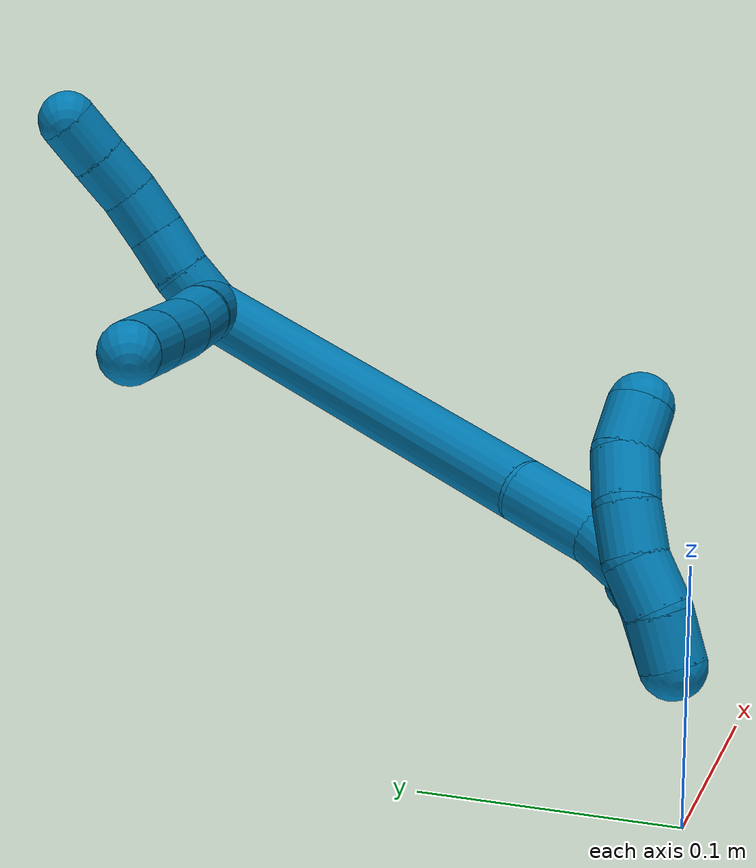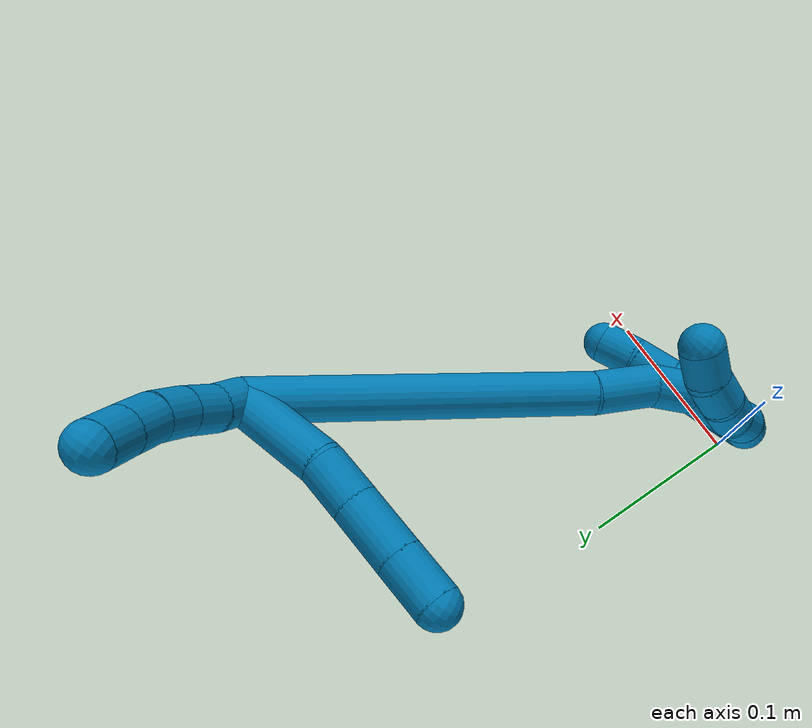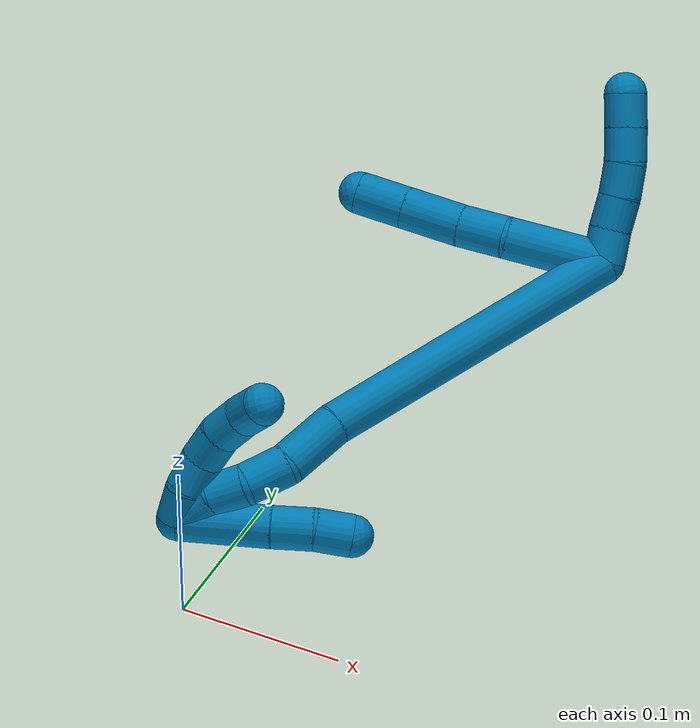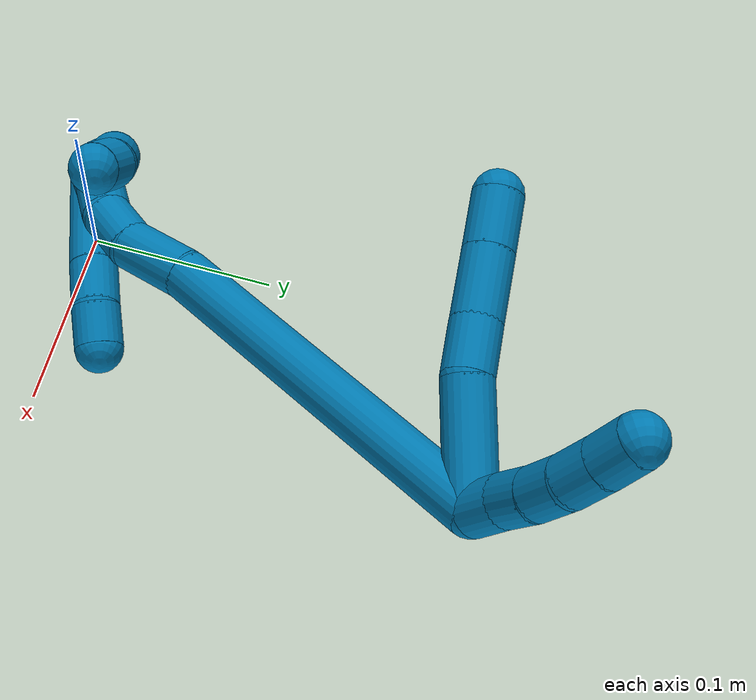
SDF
<sdf version="1.7">
 <world name="default">
  <model name="9">
   <static>0</static>
   <link name="9">
    <collision name="collision-cylinder-e_1_2_8">
     <pose>-0.011433 0.011524 -0.024529 -2.7024 -0.39922 1.47267</pose>
     <geometry><cylinder><radius>0.0125</radius><length>0.058827</length></cylinder></geometry>
     <surface>
      <friction><ode><mu>1.16</mu><mu2>1.16</mu2><slip1>0</slip1><slip2>0</slip2></ode></friction>
      <contact><ode><kp>1e+06</kp><kd>1</kd><max_vel>0</max_vel><min_depth>0.001</min_depth></ode></contact>
     </surface>
    </collision>
    <visual name="visual-cylinder-e_1_2_8">
     <pose>-0.011433 0.011524 -0.024529 -2.7024 -0.39922 1.47267</pose>
     <geometry><cylinder><radius>0.0125</radius><length>0.058827</length></cylinder></geometry>
     <material><ambient>0 0.490196 0.709804 1</ambient></material>
    </visual>
    <collision name="collision-cylinder-e_2_8_9">
     <pose>-0.0251 0.029365 -0.060941 -2.65294 -0.164463 0.638558</pose>
     <geometry><cylinder><radius>0.0125</radius><length>0.027287</length></cylinder></geometry>
     <surface>
      <friction><ode><mu>1.16</mu><mu2>1.16</mu2><slip1>0</slip1><slip2>0</slip2></ode></friction>
      <contact><ode><kp>1e+06</kp><kd>1</kd><max_vel>0</max_vel><min_depth>0.001</min_depth></ode></contact>
     </surface>
    </collision>
    <visual name="visual-cylinder-e_2_8_9">
     <pose>-0.0251 0.029365 -0.060941 -2.65294 -0.164463 0.638558</pose>
     <geometry><cylinder><radius>0.0125</radius><length>0.027287</length></cylinder></geometry>
     <material><ambient>0 0.490196 0.709804 1</ambient></material>
    </visual>
    <collision name="collision-cylinder-e_3_9_10">
     <pose>-0.030972 0.044492 -0.087541 -2.60223 -0.209067 0.725531</pose>
     <geometry><cylinder><radius>0.0125</radius><length>0.035064</length></cylinder></geometry>
     <surface>
      <friction><ode><mu>1.16</mu><mu2>1.16</mu2><slip1>0</slip1><slip2>0</slip2></ode></friction>
      <contact><ode><kp>1e+06</kp><kd>1</kd><max_vel>0</max_vel><min_depth>0.001</min_depth></ode></contact>
     </surface>
    </collision>
    <visual name="visual-cylinder-e_3_9_10">
     <pose>-0.030972 0.044492 -0.087541 -2.60223 -0.209067 0.725531</pose>
     <geometry><cylinder><radius>0.0125</radius><length>0.035064</length></cylinder></geometry>
     <material><ambient>0 0.490196 0.709804 1</ambient></material>
    </visual>
    <collision name="collision-cylinder-e_4_10_6">
     <pose>-0.037666 0.060527 -0.114344 -2.60269 -0.213637 0.740694</pose>
     <geometry><cylinder><radius>0.0125</radius><length>0.028822</length></cylinder></geometry>
     <surface>
      <friction><ode><mu>1.16</mu><mu2>1.16</mu2><slip1>0</slip1><slip2>0</slip2></ode></friction>
      <contact><ode><kp>1e+06</kp><kd>1</kd><max_vel>0</max_vel><min_depth>0.001</min_depth></ode></contact>
     </surface>
    </collision>
    <visual name="visual-cylinder-e_4_10_6">
     <pose>-0.037666 0.060527 -0.114344 -2.60269 -0.213637 0.740694</pose>
     <geometry><cylinder><radius>0.0125</radius><length>0.028822</length></cylinder></geometry>
     <material><ambient>0 0.490196 0.709804 1</ambient></material>
    </visual>
    <collision name="collision-cylinder-e_1_2_11">
     <pose>-0.001895 0.008841 0.004272 -1.12061 -0.190651 0.11983</pose>
     <geometry><cylinder><radius>0.0125</radius><length>0.02</length></cylinder></geometry>
     <surface>
      <friction><ode><mu>1.16</mu><mu2>1.16</mu2><slip1>0</slip1><slip2>0</slip2></ode></friction>
      <contact><ode><kp>1e+06</kp><kd>1</kd><max_vel>0</max_vel><min_depth>0.001</min_depth></ode></contact>
     </surface>
    </collision>
    <visual name="visual-cylinder-e_1_2_11">
     <pose>-0.001895 0.008841 0.004272 -1.12061 -0.190651 0.11983</pose>
     <geometry><cylinder><radius>0.0125</radius><length>0.02</length></cylinder></geometry>
     <material><ambient>0 0.490196 0.709804 1</ambient></material>
    </visual>
    <collision name="collision-cylinder-e_2_11_12">
     <pose>-0.006451 0.025742 0.013831 -0.990387 -0.269377 0.14611</pose>
     <geometry><cylinder><radius>0.0125</radius><length>0.02</length></cylinder></geometry>
     <surface>
      <friction><ode><mu>1.16</mu><mu2>1.16</mu2><slip1>0</slip1><slip2>0</slip2></ode></friction>
      <contact><ode><kp>1e+06</kp><kd>1</kd><max_vel>0</max_vel><min_depth>0.001</min_depth></ode></contact>
     </surface>
    </collision>
    <visual name="visual-cylinder-e_2_11_12">
     <pose>-0.006451 0.025742 0.013831 -0.990387 -0.269377 0.14611</pose>
     <geometry><cylinder><radius>0.0125</radius><length>0.02</length></cylinder></geometry>
     <material><ambient>0 0.490196 0.709804 1</ambient></material>
    </visual>
    <collision name="collision-cylinder-e_3_12_13">
     <pose>-0.012002 0.042372 0.023384 -1.10874 -0.293106 0.182276</pose>
     <geometry><cylinder><radius>0.0125</radius><length>0.02</length></cylinder></geometry>
     <surface>
      <friction><ode><mu>1.16</mu><mu2>1.16</mu2><slip1>0</slip1><slip2>0</slip2></ode></friction>
      <contact><ode><kp>1e+06</kp><kd>1</kd><max_vel>0</max_vel><min_depth>0.001</min_depth></ode></contact>
     </surface>
    </collision>
    <visual name="visual-cylinder-e_3_12_13">
     <pose>-0.012002 0.042372 0.023384 -1.10874 -0.293106 0.182276</pose>
     <geometry><cylinder><radius>0.0125</radius><length>0.02</length></cylinder></geometry>
     <material><ambient>0 0.490196 0.709804 1</ambient></material>
    </visual>
    <collision name="collision-cylinder-e_4_13_14">
     <pose>-0.017477 0.060211 0.030373 -1.28524 -0.261552 0.196295</pose>
     <geometry><cylinder><radius>0.0125</radius><length>0.02</length></cylinder></geometry>
     <surface>
      <friction><ode><mu>1.16</mu><mu2>1.16</mu2><slip1>0</slip1><slip2>0</slip2></ode></friction>
      <contact><ode><kp>1e+06</kp><kd>1</kd><max_vel>0</max_vel><min_depth>0.001</min_depth></ode></contact>
     </surface>
    </collision>
    <visual name="visual-cylinder-e_4_13_14">
     <pose>-0.017477 0.060211 0.030373 -1.28524 -0.261552 0.196295</pose>
     <geometry><cylinder><radius>0.0125</radius><length>0.02</length></cylinder></geometry>
     <material><ambient>0 0.490196 0.709804 1</ambient></material>
    </visual>
    <collision name="collision-cylinder-e_5_14_5">
     <pose>-0.02293 0.078745 0.035528 -1.31393 -0.290817 0.224935</pose>
     <geometry><cylinder><radius>0.0125</radius><length>0.02</length></cylinder></geometry>
     <surface>
      <friction><ode><mu>1.16</mu><mu2>1.16</mu2><slip1>0</slip1><slip2>0</slip2></ode></friction>
      <contact><ode><kp>1e+06</kp><kd>1</kd><max_vel>0</max_vel><min_depth>0.001</min_depth></ode></contact>
     </surface>
    </collision>
    <visual name="visual-cylinder-e_5_14_5">
     <pose>-0.02293 0.078745 0.035528 -1.31393 -0.290817 0.224935</pose>
     <geometry><cylinder><radius>0.0125</radius><length>0.02</length></cylinder></geometry>
     <material><ambient>0 0.490196 0.709804 1</ambient></material>
    </visual>
    <collision name="collision-cylinder-e_1_2_15">
     <pose>-0.040978 -0.040647 -0.076335 2.6523 -0.442489 -1.4667</pose>
     <geometry><cylinder><radius>0.0125</radius><length>0.1914</length></cylinder></geometry>
     <surface>
      <friction><ode><mu>1.16</mu><mu2>1.16</mu2><slip1>0</slip1><slip2>0</slip2></ode></friction>
      <contact><ode><kp>1e+06</kp><kd>1</kd><max_vel>0</max_vel><min_depth>0.001</min_depth></ode></contact>
     </surface>
    </collision>
    <visual name="visual-cylinder-e_1_2_15">
     <pose>-0.040978 -0.040647 -0.076335 2.6523 -0.442489 -1.4667</pose>
     <geometry><cylinder><radius>0.0125</radius><length>0.1914</length></cylinder></geometry>
     <material><ambient>0 0.490196 0.709804 1</ambient></material>
    </visual>
    <collision name="collision-cylinder-e_2_15_16">
     <pose>-0.089066 -0.091755 -0.166186 2.48294 -0.394275 -1.05774</pose>
     <geometry><cylinder><radius>0.0125</radius><length>0.037022</length></cylinder></geometry>
     <surface>
      <friction><ode><mu>1.16</mu><mu2>1.16</mu2><slip1>0</slip1><slip2>0</slip2></ode></friction>
      <contact><ode><kp>1e+06</kp><kd>1</kd><max_vel>0</max_vel><min_depth>0.001</min_depth></ode></contact>
     </surface>
    </collision>
    <visual name="visual-cylinder-e_2_15_16">
     <pose>-0.089066 -0.091755 -0.166186 2.48294 -0.394275 -1.05774</pose>
     <geometry><cylinder><radius>0.0125</radius><length>0.037022</length></cylinder></geometry>
     <material><ambient>0 0.490196 0.709804 1</ambient></material>
    </visual>
    <collision name="collision-cylinder-e_3_16_17">
     <pose>-0.100348 -0.106233 -0.191362 2.80978 -0.326154 -1.55328</pose>
     <geometry><cylinder><radius>0.0125</radius><length>0.026038</length></cylinder></geometry>
     <surface>
      <friction><ode><mu>1.16</mu><mu2>1.16</mu2><slip1>0</slip1><slip2>0</slip2></ode></friction>
      <contact><ode><kp>1e+06</kp><kd>1</kd><max_vel>0</max_vel><min_depth>0.001</min_depth></ode></contact>
     </surface>
    </collision>
    <visual name="visual-cylinder-e_3_16_17">
     <pose>-0.100348 -0.106233 -0.191362 2.80978 -0.326154 -1.55328</pose>
     <geometry><cylinder><radius>0.0125</radius><length>0.026038</length></cylinder></geometry>
     <material><ambient>0 0.490196 0.709804 1</ambient></material>
    </visual>
    <collision name="collision-cylinder-e_4_17_18">
     <pose>-0.105463 -0.111162 -0.213791 3.05712 -0.08708 -1.6012</pose>
     <geometry><cylinder><radius>0.0125</radius><length>0.021698</length></cylinder></geometry>
     <surface>
      <friction><ode><mu>1.16</mu><mu2>1.16</mu2><slip1>0</slip1><slip2>0</slip2></ode></friction>
      <contact><ode><kp>1e+06</kp><kd>1</kd><max_vel>0</max_vel><min_depth>0.001</min_depth></ode></contact>
     </surface>
    </collision>
    <visual name="visual-cylinder-e_4_17_18">
     <pose>-0.105463 -0.111162 -0.213791 3.05712 -0.08708 -1.6012</pose>
     <geometry><cylinder><radius>0.0125</radius><length>0.021698</length></cylinder></geometry>
     <material><ambient>0 0.490196 0.709804 1</ambient></material>
    </visual>
    <collision name="collision-cylinder-e_5_18_1">
     <pose>-0.104526 -0.115554 -0.235806 2.84151 0.158415 0.966945</pose>
     <geometry><cylinder><radius>0.0125</radius><length>0.023843</length></cylinder></geometry>
     <surface>
      <friction><ode><mu>1.16</mu><mu2>1.16</mu2><slip1>0</slip1><slip2>0</slip2></ode></friction>
      <contact><ode><kp>1e+06</kp><kd>1</kd><max_vel>0</max_vel><min_depth>0.001</min_depth></ode></contact>
     </surface>
    </collision>
    <visual name="visual-cylinder-e_5_18_1">
     <pose>-0.104526 -0.115554 -0.235806 2.84151 0.158415 0.966945</pose>
     <geometry><cylinder><radius>0.0125</radius><length>0.023843</length></cylinder></geometry>
     <material><ambient>0 0.490196 0.709804 1</ambient></material>
    </visual>
    <collision name="collision-cylinder-e_1_1_19">
     <pose>-0.107713 -0.11273 -0.241172 -0.82018 -0.531392 0.235516</pose>
     <geometry><cylinder><radius>0.0125</radius><length>0.02</length></cylinder></geometry>
     <surface>
      <friction><ode><mu>1.16</mu><mu2>1.16</mu2><slip1>0</slip1><slip2>0</slip2></ode></friction>
      <contact><ode><kp>1e+06</kp><kd>1</kd><max_vel>0</max_vel><min_depth>0.001</min_depth></ode></contact>
     </surface>
    </collision>
    <visual name="visual-cylinder-e_1_1_19">
     <pose>-0.107713 -0.11273 -0.241172 -0.82018 -0.531392 0.235516</pose>
     <geometry><cylinder><radius>0.0125</radius><length>0.02</length></cylinder></geometry>
     <material><ambient>0 0.490196 0.709804 1</ambient></material>
    </visual>
    <collision name="collision-cylinder-e_2_19_20">
     <pose>-0.115816 -0.100028 -0.228231 -0.736129 -0.308467 0.119766</pose>
     <geometry><cylinder><radius>0.0125</radius><length>0.02</length></cylinder></geometry>
     <surface>
      <friction><ode><mu>1.16</mu><mu2>1.16</mu2><slip1>0</slip1><slip2>0</slip2></ode></friction>
      <contact><ode><kp>1e+06</kp><kd>1</kd><max_vel>0</max_vel><min_depth>0.001</min_depth></ode></contact>
     </surface>
    </collision>
    <visual name="visual-cylinder-e_2_19_20">
     <pose>-0.115816 -0.100028 -0.228231 -0.736129 -0.308467 0.119766</pose>
     <geometry><cylinder><radius>0.0125</radius><length>0.02</length></cylinder></geometry>
     <material><ambient>0 0.490196 0.709804 1</ambient></material>
    </visual>
    <collision name="collision-cylinder-e_3_20_21">
     <pose>-0.123322 -0.089446 -0.213263 -0.48677 -0.463427 0.117043</pose>
     <geometry><cylinder><radius>0.0125</radius><length>0.02</length></cylinder></geometry>
     <surface>
      <friction><ode><mu>1.16</mu><mu2>1.16</mu2><slip1>0</slip1><slip2>0</slip2></ode></friction>
      <contact><ode><kp>1e+06</kp><kd>1</kd><max_vel>0</max_vel><min_depth>0.001</min_depth></ode></contact>
     </surface>
    </collision>
    <visual name="visual-cylinder-e_3_20_21">
     <pose>-0.123322 -0.089446 -0.213263 -0.48677 -0.463427 0.117043</pose>
     <geometry><cylinder><radius>0.0125</radius><length>0.02</length></cylinder></geometry>
     <material><ambient>0 0.490196 0.709804 1</ambient></material>
    </visual>
    <collision name="collision-cylinder-e_4_21_22">
     <pose>-0.131772 -0.083251 -0.196406 -0.220957 -0.409284 0.046038</pose>
     <geometry><cylinder><radius>0.0125</radius><length>0.02</length></cylinder></geometry>
     <surface>
      <friction><ode><mu>1.16</mu><mu2>1.16</mu2><slip1>0</slip1><slip2>0</slip2></ode></friction>
      <contact><ode><kp>1e+06</kp><kd>1</kd><max_vel>0</max_vel><min_depth>0.001</min_depth></ode></contact>
     </surface>
    </collision>
    <visual name="visual-cylinder-e_4_21_22">
     <pose>-0.131772 -0.083251 -0.196406 -0.220957 -0.409284 0.046038</pose>
     <geometry><cylinder><radius>0.0125</radius><length>0.02</length></cylinder></geometry>
     <material><ambient>0 0.490196 0.709804 1</ambient></material>
    </visual>
    <collision name="collision-cylinder-e_5_22_4">
     <pose>-0.141643 -0.081725 -0.17939 0.05999 -0.630027 -0.019554</pose>
     <geometry><cylinder><radius>0.0125</radius><length>0.02</length></cylinder></geometry>
     <surface>
      <friction><ode><mu>1.16</mu><mu2>1.16</mu2><slip1>0</slip1><slip2>0</slip2></ode></friction>
      <contact><ode><kp>1e+06</kp><kd>1</kd><max_vel>0</max_vel><min_depth>0.001</min_depth></ode></contact>
     </surface>
    </collision>
    <visual name="visual-cylinder-e_5_22_4">
     <pose>-0.141643 -0.081725 -0.17939 0.05999 -0.630027 -0.019554</pose>
     <geometry><cylinder><radius>0.0125</radius><length>0.02</length></cylinder></geometry>
     <material><ambient>0 0.490196 0.709804 1</ambient></material>
    </visual>
    <collision name="collision-cylinder-e_1_1_23">
     <pose>-0.095287 -0.126175 -0.22203 0.278003 0.275601 0.038799</pose>
     <geometry><cylinder><radius>0.0125</radius><length>0.054084</length></cylinder></geometry>
     <surface>
      <friction><ode><mu>1.16</mu><mu2>1.16</mu2><slip1>0</slip1><slip2>0</slip2></ode></friction>
      <contact><ode><kp>1e+06</kp><kd>1</kd><max_vel>0</max_vel><min_depth>0.001</min_depth></ode></contact>
     </surface>
    </collision>
    <visual name="visual-cylinder-e_1_1_23">
     <pose>-0.095287 -0.126175 -0.22203 0.278003 0.275601 0.038799</pose>
     <geometry><cylinder><radius>0.0125</radius><length>0.054084</length></cylinder></geometry>
     <material><ambient>0 0.490196 0.709804 1</ambient></material>
    </visual>
    <collision name="collision-cylinder-e_2_23_24">
     <pose>-0.084281 -0.13608 -0.185799 0.241743 0.306004 0.037457</pose>
     <geometry><cylinder><radius>0.0125</radius><length>0.024212</length></cylinder></geometry>
     <surface>
      <friction><ode><mu>1.16</mu><mu2>1.16</mu2><slip1>0</slip1><slip2>0</slip2></ode></friction>
      <contact><ode><kp>1e+06</kp><kd>1</kd><max_vel>0</max_vel><min_depth>0.001</min_depth></ode></contact>
     </surface>
    </collision>
    <visual name="visual-cylinder-e_2_23_24">
     <pose>-0.084281 -0.13608 -0.185799 0.241743 0.306004 0.037457</pose>
     <geometry><cylinder><radius>0.0125</radius><length>0.024212</length></cylinder></geometry>
     <material><ambient>0 0.490196 0.709804 1</ambient></material>
    </visual>
    <collision name="collision-cylinder-e_3_24_3">
     <pose>-0.075898 -0.142025 -0.165361 0.331972 0.451642 0.076937</pose>
     <geometry><cylinder><radius>0.0125</radius><length>0.021704</length></cylinder></geometry>
     <surface>
      <friction><ode><mu>1.16</mu><mu2>1.16</mu2><slip1>0</slip1><slip2>0</slip2></ode></friction>
      <contact><ode><kp>1e+06</kp><kd>1</kd><max_vel>0</max_vel><min_depth>0.001</min_depth></ode></contact>
     </surface>
    </collision>
    <visual name="visual-cylinder-e_3_24_3">
     <pose>-0.075898 -0.142025 -0.165361 0.331972 0.451642 0.076937</pose>
     <geometry><cylinder><radius>0.0125</radius><length>0.021704</length></cylinder></geometry>
     <material><ambient>0 0.490196 0.709804 1</ambient></material>
    </visual>
    <collision name="collision-sphere-3">
     <pose>-0.071161 -0.145208 -0.15613 0 -0 0</pose>
     <geometry><sphere><radius>0.0125</radius></sphere></geometry>
     <surface>
      <friction><ode><mu>1.16</mu><mu2>1.16</mu2><slip1>0</slip1><slip2>0</slip2></ode></friction>
      <contact><ode><kp>1e+06</kp><kd>1</kd><max_vel>0</max_vel><min_depth>0.001</min_depth></ode></contact>
     </surface>
    </collision>
    <visual name="visual-sphere-3">
     <pose>-0.071161 -0.145208 -0.15613 0 -0 0</pose>
     <geometry><sphere><radius>0.0125</radius></sphere></geometry>
     <material><ambient>0 0.490196 0.709804 1</ambient></material>
    </visual>
    <collision name="collision-sphere-24">
     <pose>-0.080634 -0.138843 -0.174592 0 -0 0</pose>
     <geometry><sphere><radius>0.0125</radius></sphere></geometry>
     <surface>
      <friction><ode><mu>1.16</mu><mu2>1.16</mu2><slip1>0</slip1><slip2>0</slip2></ode></friction>
      <contact><ode><kp>1e+06</kp><kd>1</kd><max_vel>0</max_vel><min_depth>0.001</min_depth></ode></contact>
     </surface>
    </collision>
    <visual name="visual-sphere-24">
     <pose>-0.080634 -0.138843 -0.174592 0 -0 0</pose>
     <geometry><sphere><radius>0.0125</radius></sphere></geometry>
     <material><ambient>0 0.490196 0.709804 1</ambient></material>
    </visual>
    <collision name="collision-sphere-23">
     <pose>-0.087928 -0.133316 -0.197007 0 -0 0</pose>
     <geometry><sphere><radius>0.0125</radius></sphere></geometry>
     <surface>
      <friction><ode><mu>1.16</mu><mu2>1.16</mu2><slip1>0</slip1><slip2>0</slip2></ode></friction>
      <contact><ode><kp>1e+06</kp><kd>1</kd><max_vel>0</max_vel><min_depth>0.001</min_depth></ode></contact>
     </surface>
    </collision>
    <visual name="visual-sphere-23">
     <pose>-0.087928 -0.133316 -0.197007 0 -0 0</pose>
     <geometry><sphere><radius>0.0125</radius></sphere></geometry>
     <material><ambient>0 0.490196 0.709804 1</ambient></material>
    </visual>
    <collision name="collision-sphere-4">
     <pose>-0.147535 -0.08221 -0.171324 0 -0 0</pose>
     <geometry><sphere><radius>0.0125</radius></sphere></geometry>
     <surface>
      <friction><ode><mu>1.16</mu><mu2>1.16</mu2><slip1>0</slip1><slip2>0</slip2></ode></friction>
      <contact><ode><kp>1e+06</kp><kd>1</kd><max_vel>0</max_vel><min_depth>0.001</min_depth></ode></contact>
     </surface>
    </collision>
    <visual name="visual-sphere-4">
     <pose>-0.147535 -0.08221 -0.171324 0 -0 0</pose>
     <geometry><sphere><radius>0.0125</radius></sphere></geometry>
     <material><ambient>0 0.490196 0.709804 1</ambient></material>
    </visual>
    <collision name="collision-sphere-22">
     <pose>-0.135751 -0.081241 -0.187455 0 -0 0</pose>
     <geometry><sphere><radius>0.0125</radius></sphere></geometry>
     <surface>
      <friction><ode><mu>1.16</mu><mu2>1.16</mu2><slip1>0</slip1><slip2>0</slip2></ode></friction>
      <contact><ode><kp>1e+06</kp><kd>1</kd><max_vel>0</max_vel><min_depth>0.001</min_depth></ode></contact>
     </surface>
    </collision>
    <visual name="visual-sphere-22">
     <pose>-0.135751 -0.081241 -0.187455 0 -0 0</pose>
     <geometry><sphere><radius>0.0125</radius></sphere></geometry>
     <material><ambient>0 0.490196 0.709804 1</ambient></material>
    </visual>
    <collision name="collision-sphere-21">
     <pose>-0.127792 -0.085262 -0.205357 0 -0 0</pose>
     <geometry><sphere><radius>0.0125</radius></sphere></geometry>
     <surface>
      <friction><ode><mu>1.16</mu><mu2>1.16</mu2><slip1>0</slip1><slip2>0</slip2></ode></friction>
      <contact><ode><kp>1e+06</kp><kd>1</kd><max_vel>0</max_vel><min_depth>0.001</min_depth></ode></contact>
     </surface>
    </collision>
    <visual name="visual-sphere-21">
     <pose>-0.127792 -0.085262 -0.205357 0 -0 0</pose>
     <geometry><sphere><radius>0.0125</radius></sphere></geometry>
     <material><ambient>0 0.490196 0.709804 1</ambient></material>
    </visual>
    <collision name="collision-sphere-20">
     <pose>-0.118852 -0.093631 -0.22117 0 -0 0</pose>
     <geometry><sphere><radius>0.0125</radius></sphere></geometry>
     <surface>
      <friction><ode><mu>1.16</mu><mu2>1.16</mu2><slip1>0</slip1><slip2>0</slip2></ode></friction>
      <contact><ode><kp>1e+06</kp><kd>1</kd><max_vel>0</max_vel><min_depth>0.001</min_depth></ode></contact>
     </surface>
    </collision>
    <visual name="visual-sphere-20">
     <pose>-0.118852 -0.093631 -0.22117 0 -0 0</pose>
     <geometry><sphere><radius>0.0125</radius></sphere></geometry>
     <material><ambient>0 0.490196 0.709804 1</ambient></material>
    </visual>
    <collision name="collision-sphere-11">
     <pose>-0.00379 0.017681 0.008545 0 -0 0</pose>
     <geometry><sphere><radius>0.0125</radius></sphere></geometry>
     <surface>
      <friction><ode><mu>1.16</mu><mu2>1.16</mu2><slip1>0</slip1><slip2>0</slip2></ode></friction>
      <contact><ode><kp>1e+06</kp><kd>1</kd><max_vel>0</max_vel><min_depth>0.001</min_depth></ode></contact>
     </surface>
    </collision>
    <visual name="visual-sphere-11">
     <pose>-0.00379 0.017681 0.008545 0 -0 0</pose>
     <geometry><sphere><radius>0.0125</radius></sphere></geometry>
     <material><ambient>0 0.490196 0.709804 1</ambient></material>
    </visual>
    <collision name="collision-sphere-6">
     <pose>-0.040722 0.067755 -0.126431 0 -0 0</pose>
     <geometry><sphere><radius>0.0125</radius></sphere></geometry>
     <surface>
      <friction><ode><mu>1.16</mu><mu2>1.16</mu2><slip1>0</slip1><slip2>0</slip2></ode></friction>
      <contact><ode><kp>1e+06</kp><kd>1</kd><max_vel>0</max_vel><min_depth>0.001</min_depth></ode></contact>
     </surface>
    </collision>
    <visual name="visual-sphere-6">
     <pose>-0.040722 0.067755 -0.126431 0 -0 0</pose>
     <geometry><sphere><radius>0.0125</radius></sphere></geometry>
     <material><ambient>0 0.490196 0.709804 1</ambient></material>
    </visual>
    <collision name="collision-sphere-10">
     <pose>-0.034611 0.0533 -0.102256 0 -0 0</pose>
     <geometry><sphere><radius>0.0125</radius></sphere></geometry>
     <surface>
      <friction><ode><mu>1.16</mu><mu2>1.16</mu2><slip1>0</slip1><slip2>0</slip2></ode></friction>
      <contact><ode><kp>1e+06</kp><kd>1</kd><max_vel>0</max_vel><min_depth>0.001</min_depth></ode></contact>
     </surface>
    </collision>
    <visual name="visual-sphere-10">
     <pose>-0.034611 0.0533 -0.102256 0 -0 0</pose>
     <geometry><sphere><radius>0.0125</radius></sphere></geometry>
     <material><ambient>0 0.490196 0.709804 1</ambient></material>
    </visual>
    <collision name="collision-sphere-9">
     <pose>-0.027334 0.035683 -0.072825 0 -0 0</pose>
     <geometry><sphere><radius>0.0125</radius></sphere></geometry>
     <surface>
      <friction><ode><mu>1.16</mu><mu2>1.16</mu2><slip1>0</slip1><slip2>0</slip2></ode></friction>
      <contact><ode><kp>1e+06</kp><kd>1</kd><max_vel>0</max_vel><min_depth>0.001</min_depth></ode></contact>
     </surface>
    </collision>
    <visual name="visual-sphere-9">
     <pose>-0.027334 0.035683 -0.072825 0 -0 0</pose>
     <geometry><sphere><radius>0.0125</radius></sphere></geometry>
     <material><ambient>0 0.490196 0.709804 1</ambient></material>
    </visual>
    <collision name="collision-sphere-2">
     <geometry><sphere><radius>0.0125</radius></sphere></geometry>
     <surface>
      <friction><ode><mu>1.16</mu><mu2>1.16</mu2><slip1>0</slip1><slip2>0</slip2></ode></friction>
      <contact><ode><kp>1e+06</kp><kd>1</kd><max_vel>0</max_vel><min_depth>0.001</min_depth></ode></contact>
     </surface>
    </collision>
    <visual name="visual-sphere-2">
     <geometry><sphere><radius>0.0125</radius></sphere></geometry>
     <material><ambient>0 0.490196 0.709804 1</ambient></material>
    </visual>
    <collision name="collision-sphere-19">
     <pose>-0.11278 -0.106425 -0.235292 0 -0 0</pose>
     <geometry><sphere><radius>0.0125</radius></sphere></geometry>
     <surface>
      <friction><ode><mu>1.16</mu><mu2>1.16</mu2><slip1>0</slip1><slip2>0</slip2></ode></friction>
      <contact><ode><kp>1e+06</kp><kd>1</kd><max_vel>0</max_vel><min_depth>0.001</min_depth></ode></contact>
     </surface>
    </collision>
    <visual name="visual-sphere-19">
     <pose>-0.11278 -0.106425 -0.235292 0 -0 0</pose>
     <geometry><sphere><radius>0.0125</radius></sphere></geometry>
     <material><ambient>0 0.490196 0.709804 1</ambient></material>
    </visual>
    <collision name="collision-sphere-8">
     <pose>-0.022866 0.023047 -0.049057 0 -0 0</pose>
     <geometry><sphere><radius>0.0125</radius></sphere></geometry>
     <surface>
      <friction><ode><mu>1.16</mu><mu2>1.16</mu2><slip1>0</slip1><slip2>0</slip2></ode></friction>
      <contact><ode><kp>1e+06</kp><kd>1</kd><max_vel>0</max_vel><min_depth>0.001</min_depth></ode></contact>
     </surface>
    </collision>
    <visual name="visual-sphere-8">
     <pose>-0.022866 0.023047 -0.049057 0 -0 0</pose>
     <geometry><sphere><radius>0.0125</radius></sphere></geometry>
     <material><ambient>0 0.490196 0.709804 1</ambient></material>
    </visual>
    <collision name="collision-sphere-12">
     <pose>-0.009113 0.033803 0.019117 0 -0 0</pose>
     <geometry><sphere><radius>0.0125</radius></sphere></geometry>
     <surface>
      <friction><ode><mu>1.16</mu><mu2>1.16</mu2><slip1>0</slip1><slip2>0</slip2></ode></friction>
      <contact><ode><kp>1e+06</kp><kd>1</kd><max_vel>0</max_vel><min_depth>0.001</min_depth></ode></contact>
     </surface>
    </collision>
    <visual name="visual-sphere-12">
     <pose>-0.009113 0.033803 0.019117 0 -0 0</pose>
     <geometry><sphere><radius>0.0125</radius></sphere></geometry>
     <material><ambient>0 0.490196 0.709804 1</ambient></material>
    </visual>
    <collision name="collision-sphere-13">
     <pose>-0.014891 0.050942 0.027652 0 -0 0</pose>
     <geometry><sphere><radius>0.0125</radius></sphere></geometry>
     <surface>
      <friction><ode><mu>1.16</mu><mu2>1.16</mu2><slip1>0</slip1><slip2>0</slip2></ode></friction>
      <contact><ode><kp>1e+06</kp><kd>1</kd><max_vel>0</max_vel><min_depth>0.001</min_depth></ode></contact>
     </surface>
    </collision>
    <visual name="visual-sphere-13">
     <pose>-0.014891 0.050942 0.027652 0 -0 0</pose>
     <geometry><sphere><radius>0.0125</radius></sphere></geometry>
     <material><ambient>0 0.490196 0.709804 1</ambient></material>
    </visual>
    <collision name="collision-sphere-14">
     <pose>-0.020063 0.069479 0.033094 0 -0 0</pose>
     <geometry><sphere><radius>0.0125</radius></sphere></geometry>
     <surface>
      <friction><ode><mu>1.16</mu><mu2>1.16</mu2><slip1>0</slip1><slip2>0</slip2></ode></friction>
      <contact><ode><kp>1e+06</kp><kd>1</kd><max_vel>0</max_vel><min_depth>0.001</min_depth></ode></contact>
     </surface>
    </collision>
    <visual name="visual-sphere-14">
     <pose>-0.020063 0.069479 0.033094 0 -0 0</pose>
     <geometry><sphere><radius>0.0125</radius></sphere></geometry>
     <material><ambient>0 0.490196 0.709804 1</ambient></material>
    </visual>
    <collision name="collision-sphere-5">
     <pose>-0.025797 0.088011 0.037962 0 -0 0</pose>
     <geometry><sphere><radius>0.0125</radius></sphere></geometry>
     <surface>
      <friction><ode><mu>1.16</mu><mu2>1.16</mu2><slip1>0</slip1><slip2>0</slip2></ode></friction>
      <contact><ode><kp>1e+06</kp><kd>1</kd><max_vel>0</max_vel><min_depth>0.001</min_depth></ode></contact>
     </surface>
    </collision>
    <visual name="visual-sphere-5">
     <pose>-0.025797 0.088011 0.037962 0 -0 0</pose>
     <geometry><sphere><radius>0.0125</radius></sphere></geometry>
     <material><ambient>0 0.490196 0.709804 1</ambient></material>
    </visual>
    <collision name="collision-sphere-15">
     <pose>-0.081955 -0.081295 -0.152671 0 -0 0</pose>
     <geometry><sphere><radius>0.0125</radius></sphere></geometry>
     <surface>
      <friction><ode><mu>1.16</mu><mu2>1.16</mu2><slip1>0</slip1><slip2>0</slip2></ode></friction>
      <contact><ode><kp>1e+06</kp><kd>1</kd><max_vel>0</max_vel><min_depth>0.001</min_depth></ode></contact>
     </surface>
    </collision>
    <visual name="visual-sphere-15">
     <pose>-0.081955 -0.081295 -0.152671 0 -0 0</pose>
     <geometry><sphere><radius>0.0125</radius></sphere></geometry>
     <material><ambient>0 0.490196 0.709804 1</ambient></material>
    </visual>
    <collision name="collision-sphere-16">
     <pose>-0.096177 -0.102215 -0.179702 0 -0 0</pose>
     <geometry><sphere><radius>0.0125</radius></sphere></geometry>
     <surface>
      <friction><ode><mu>1.16</mu><mu2>1.16</mu2><slip1>0</slip1><slip2>0</slip2></ode></friction>
      <contact><ode><kp>1e+06</kp><kd>1</kd><max_vel>0</max_vel><min_depth>0.001</min_depth></ode></contact>
     </surface>
    </collision>
    <visual name="visual-sphere-16">
     <pose>-0.096177 -0.102215 -0.179702 0 -0 0</pose>
     <geometry><sphere><radius>0.0125</radius></sphere></geometry>
     <material><ambient>0 0.490196 0.709804 1</ambient></material>
    </visual>
    <collision name="collision-sphere-17">
     <pose>-0.10452 -0.11025 -0.203022 0 -0 0</pose>
     <geometry><sphere><radius>0.0125</radius></sphere></geometry>
     <surface>
      <friction><ode><mu>1.16</mu><mu2>1.16</mu2><slip1>0</slip1><slip2>0</slip2></ode></friction>
      <contact><ode><kp>1e+06</kp><kd>1</kd><max_vel>0</max_vel><min_depth>0.001</min_depth></ode></contact>
     </surface>
    </collision>
    <visual name="visual-sphere-17">
     <pose>-0.10452 -0.11025 -0.203022 0 -0 0</pose>
     <geometry><sphere><radius>0.0125</radius></sphere></geometry>
     <material><ambient>0 0.490196 0.709804 1</ambient></material>
    </visual>
    <collision name="collision-sphere-18">
     <pose>-0.106407 -0.112074 -0.22456 0 -0 0</pose>
     <geometry><sphere><radius>0.0125</radius></sphere></geometry>
     <surface>
      <friction><ode><mu>1.16</mu><mu2>1.16</mu2><slip1>0</slip1><slip2>0</slip2></ode></friction>
      <contact><ode><kp>1e+06</kp><kd>1</kd><max_vel>0</max_vel><min_depth>0.001</min_depth></ode></contact>
     </surface>
    </collision>
    <visual name="visual-sphere-18">
     <pose>-0.106407 -0.112074 -0.22456 0 -0 0</pose>
     <geometry><sphere><radius>0.0125</radius></sphere></geometry>
     <material><ambient>0 0.490196 0.709804 1</ambient></material>
    </visual>
    <collision name="collision-sphere-1">
     <pose>-0.102645 -0.119034 -0.247052 0 -0 0</pose>
     <geometry><sphere><radius>0.0125</radius></sphere></geometry>
     <surface>
      <friction><ode><mu>1.16</mu><mu2>1.16</mu2><slip1>0</slip1><slip2>0</slip2></ode></friction>
      <contact><ode><kp>1e+06</kp><kd>1</kd><max_vel>0</max_vel><min_depth>0.001</min_depth></ode></contact>
     </surface>
    </collision>
    <visual name="visual-sphere-1">
     <pose>-0.102645 -0.119034 -0.247052 0 -0 0</pose>
     <geometry><sphere><radius>0.0125</radius></sphere></geometry>
     <material><ambient>0 0.490196 0.709804 1</ambient></material>
    </visual>
    <inertial>
     <pose>-0.059366 -0.043404 -0.112793 0 -0 0</pose>
     <mass>0.75</mass>
     <inertia>
      <ixx>-0.000425</ixx>
      <ixy>0</ixy>
      <ixz>0</ixz>
      <iyy>-0.000423</iyy>
      <iyz>0</iyz>
      <izz>0.000491</izz>
     </inertia>
    </inertial>
   </link>
   <pose>0.15344 0.240199 0.137319 0.955836 0.879278 1.47198</pose>
  </model>
 </world>
</sdf>
